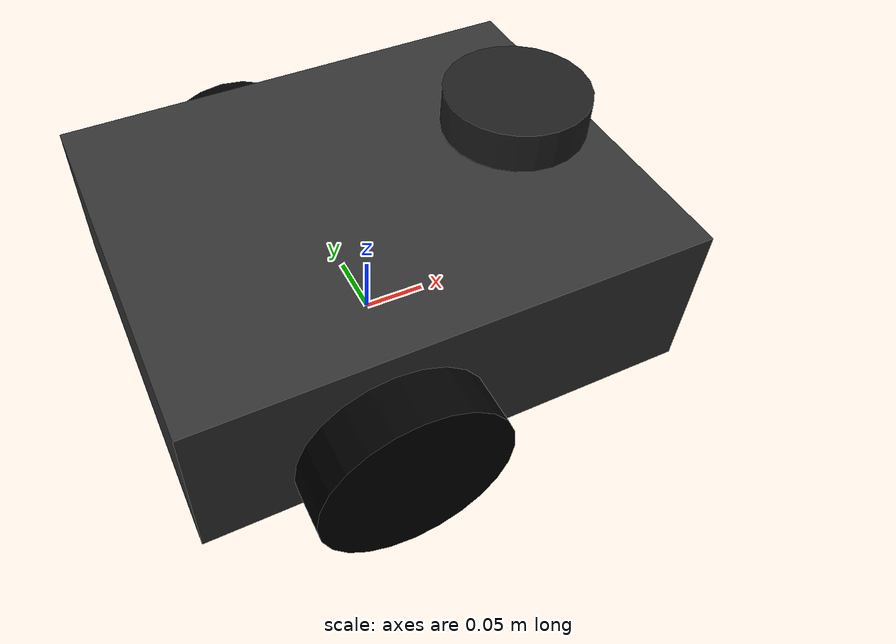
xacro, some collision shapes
<?xml version="1.0"?>
<robot name="stella" xmlns:xacro="http://www.ros.org/wiki/xacro">
	<xacro:property name="PI" value="3.1415926535897931"/>

	<xacro:property name="bodyHeight" value="0.125"/>
	<xacro:property name="bodyLength" value="0.38"/>
	<xacro:property name="bodyWidth" value="0.3"/>
	<xacro:property name="bodyMass" value="10"/>
	<xacro:property name="bodyToFloorHeight" value="0.0325"/>

	<xacro:property name="casterRadius" value="0.05175"/>
	<xacro:property name="casterMass" value="0.2"/>

	<xacro:property name="wheelWidth" value="0.038"/>
	<xacro:property name="wheelRadius" value="0.0725"/>
	<xacro:property name="wheelPos" value="0.05"/>
	<xacro:property name="wheelMass" value="1"/>

	<xacro:include filename="$(find stella_description)/urdf/macros.xacro"/>
	<xacro:include filename="$(find stella_description)/urdf/materials.xacro"/>
	<xacro:include filename="$(find stella_description)/urdf/stella.gazebo"/>

	<link name="base_footprint"/>

	<joint name="base_joint" type="fixed">
		<parent link="base_footprint"/>
		<child link="base_link"/>
	</joint>

	<link name="base_link">
		<visual>
			<origin xyz="0 0 ${wheelRadius}" rpy="0 0 0"/>
			<geometry>
				<box size="${bodyLength} ${bodyWidth} ${bodyHeight}"/>
			</geometry>
			<material name="grey"/>
		</visual>

		<collision>
			<origin xyz="0 0 ${wheelRadius}" rpy="0 0 0"/>
			<geometry>
				<box size="${bodyLength} ${bodyWidth} ${bodyHeight}"/>
			</geometry>
		</collision>
 <inertial>
      <origin xyz="0 0 0" rpy="0 0 0"/>
      <mass value="8.2573504e-01"/>
      <inertia ixx="2.2124416e-03" ixy="-1.2294101e-05" ixz="3.4938785e-05"
               iyy="2.1193702e-03" iyz="-5.0120904e-06"
               izz="2.0064271e-03" />
    </inertial>

	</link>

<joint name="caster_joint" type="fixed">
  <parent link="base_link"/>
  <child link="caster_wheel"/>
</joint>

<link name="caster_wheel">
  <collision>
    <origin xyz="${-wheelRadius - 0.02 + bodyLength/2} 0 ${-bodyHeight / 2 + bodyToFloorHeight + wheelRadius}" rpy="0 0 0"/>
    <geometry>
      <sphere radius="${wheelRadius}"/>
    </geometry>
  </collision>

  <visual>
    <origin xyz="${-wheelRadius - 0.02 + bodyLength/2} 0 ${-bodyHeight / 2 + bodyToFloorHeight +  wheelRadius}" rpy="0 0 0"/>
    <geometry>
      <sphere radius="${wheelRadius}"/>
    </geometry>
    <material name="black"/>
  </visual>

  <inertial>
    <origin xyz="${-wheelRadius - 0.02 + bodyLength/2} 0 ${-bodyHeight / 2 + bodyToFloorHeight + wheelRadius}" rpy="0 0 0"/>
    <mass value="${casterMass}"/>
    <sphere_inertia m="${casterMass}" r="${casterRadius}"/>
  </inertial>
</link>

<wheel lr="left" tY="1"/>
<wheel lr="right" tY="-1"/>

 <joint name="imu_joint" type="fixed">
    <parent link="base_link"/>
    <child link="imu_link"/>
    <origin xyz="-0.032 0 0.068" rpy="0 0 0"/>
  </joint>

  <link name="imu_link"/>

  <joint name="scan_joint" type="fixed">
    <parent link="base_link"/>
    <child link="base_scan"/>
    <origin xyz="0.135 0 ${bodyHeight + bodyToFloorHeight + 0.015}" rpy="0 0 3.14 "/>
  </joint>

  <link name="base_scan">
    <visual>
      <origin xyz="0 0 0.0" rpy="0 0 0"/>
      <geometry>
        <mesh filename="package://stella_description/meshes/sensors/lds.stl" scale="0.001 0.001 0.001"/>
      </geometry>
      <material name="dark"/>
    </visual>

    <collision>
      <origin xyz="0.015 0 -0.0065" rpy="0 0 0"/>
      <geometry>
        <cylinder length="0.0315" radius="0.055"/>
      </geometry>
    </collision>

    <inertial>
      <mass value="0.114" />
      <origin xyz="0 0 0" />
      <inertia ixx="0.001" ixy="0.0" ixz="0.0"
               iyy="0.001" iyz="0.0"
               izz="0.001" />
    </inertial>
  </link>

</robot>

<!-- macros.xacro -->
<robot>
<macro name="cylinder_inertia" params="m r h">
	<inertia ixx="${m*(3*r*r+h*h)/12}" ixy="0" ixz="0"
		 iyy="${m*(3*r*r+h*h)/12}" iyz="0"
		izz="${m*r*r/2}"
  	/>
</macro>

<macro name="box_inertia" params="m x y z">
	<inertia ixx="${m*(y*y+z*z)/12}" ixy="0" ixz="0"
		iyy="${m*(x*x+z*z)/12}" iyz="0"
		izz="${m*(x*x+z*z)/12}"
	/>
</macro>

<macro name="sphere_inertia" params="m r">
	<inertia  ixx="${2*m*r*r/5}" ixy="0" ixz="0"
		iyy="${2*m*r*r/5}" iyz="0"
		izz="${2*m*r*r/5}"
	/>
</macro>

<macro name="wheel" params="lr tY">

<link name="${lr}_wheel">
  <collision>
    <origin xyz="0 0 0" rpy="0 ${PI/2} ${PI/2}" />
    <geometry>
      <cylinder length="${wheelWidth}" radius="${wheelRadius}"/>
    </geometry>
  </collision>

  <visual>
    <origin xyz="0 0 0" rpy="0 ${PI/2} ${PI/2}" />
    <geometry>
      <cylinder length="${wheelWidth}" radius="${wheelRadius}"/>
    </geometry>
    <material name="black"/>
  </visual>

  <inertial>
    <origin xyz="0 0 0" rpy="0 ${PI/2} ${PI/2}" />
    <mass value="${wheelMass}"/>
    <cylinder_inertia m="${wheelMass}" r="${wheelRadius}" h="${wheelWidth}"/>
  </inertial>
</link>

<gazebo reference="${lr}_wheel">
  <mu1 value="100000.0"/>
  <mu2 value="100000.0"/>
  <kp  value="10000000.0" />
  <kd  value="1.0" />
  <minDepth>0.001</minDepth>
  <maxVel>0.3</maxVel>
  <fdir1 value="1 0 0"/>
  <material>Gazebo/Black</material>
</gazebo>

<joint name="${lr}_wheel_hinge" type="continuous">
  <parent link="base_link"/>
  <child link="${lr}_wheel"/>
<origin xyz="${-wheelPos} ${tY*wheelWidth/2+tY*bodyWidth/2} ${-bodyHeight / 2 + wheelRadius + bodyToFloorHeight}" rpy="0 0 0" />
  <axis xyz="0 1 0" rpy="0 0 0" />
  <limit effort="300" velocity="100"/>
  <joint_properties damping="0.0" friction="0.0"/>
</joint>

<transmission name="${lr}_trans">
  <type>transmission_interface/SimpleTransmission</type>
  <joint name="${lr}_wheel_hinge">
    <hardwareInterface>EffortJointInterface</hardwareInterface>
  </joint>
  <actuator name="${lr}Motor">
    <hardwareInterface>EffortJointInterface</hardwareInterface>
    <mechanicalReduction>10</mechanicalReduction>
  </actuator>
</transmission>

</macro>
</robot>

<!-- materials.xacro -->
<robot>
<material name="black">
  <color rgba="0.0 0.0 0.0 1.0"/>
</material>

<material name="blue">
  <color rgba="0.0 0.0 0.8 1.0"/>
</material>

<material name="green">
  <color rgba="0.0 0.8 0.0 1.0"/>
</material>

<material name="grey">
  <color rgba="0.2 0.2 0.2 1.0"/>
</material>

<material name="orange">
  <color rgba="${255/255} ${108/255} ${10/255} 1.0"/>
</material>

<material name="brown">
  <color rgba="${222/255} ${207/255} ${195/255} 1.0"/>
</material>

<material name="red">
  <color rgba="0.8 0.0 0.0 1.0"/>
</material>

<material name="white">
  <color rgba="1.0 1.0 1.0 1.0"/>
</material>

<material name="burgundy">
  <color rgba="${50.0/255} 0.0 ${13.0/255} 1.0"/>
</material>
</robot>
